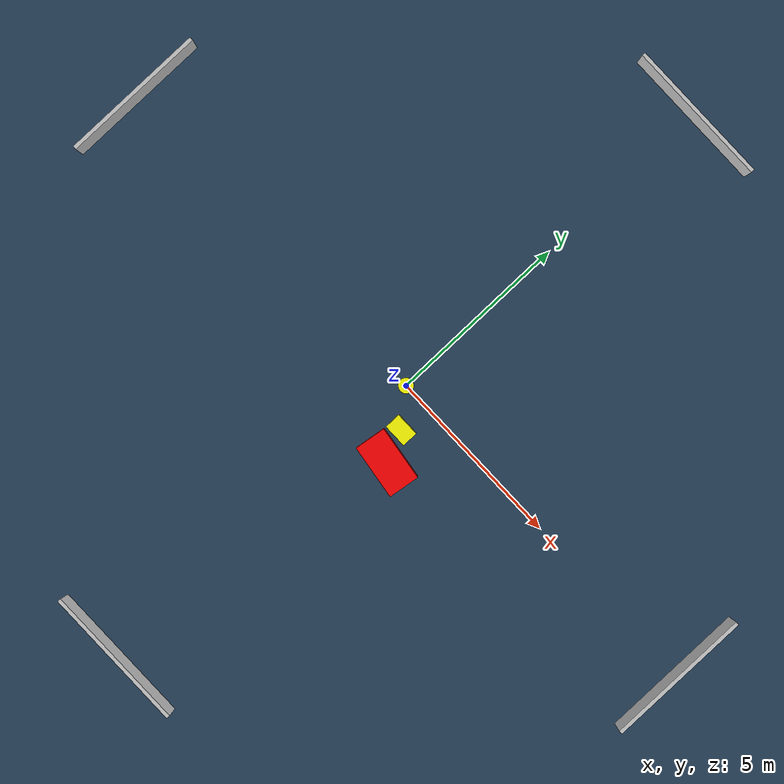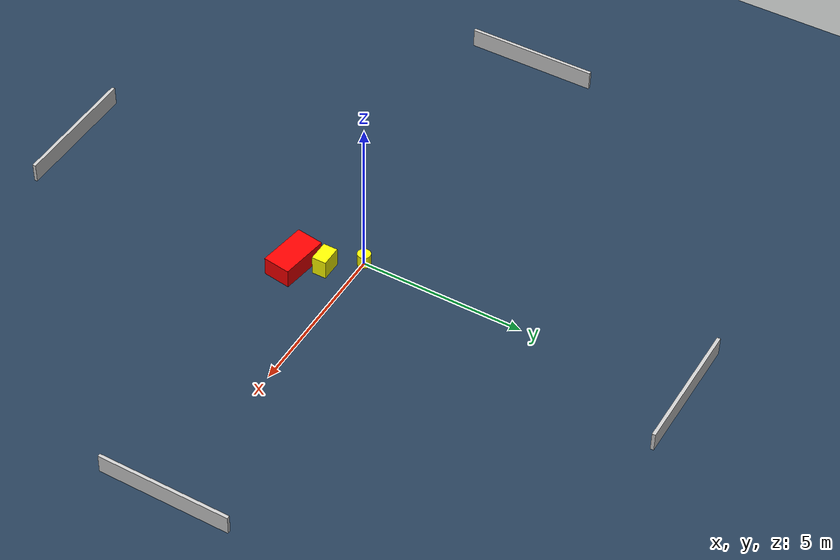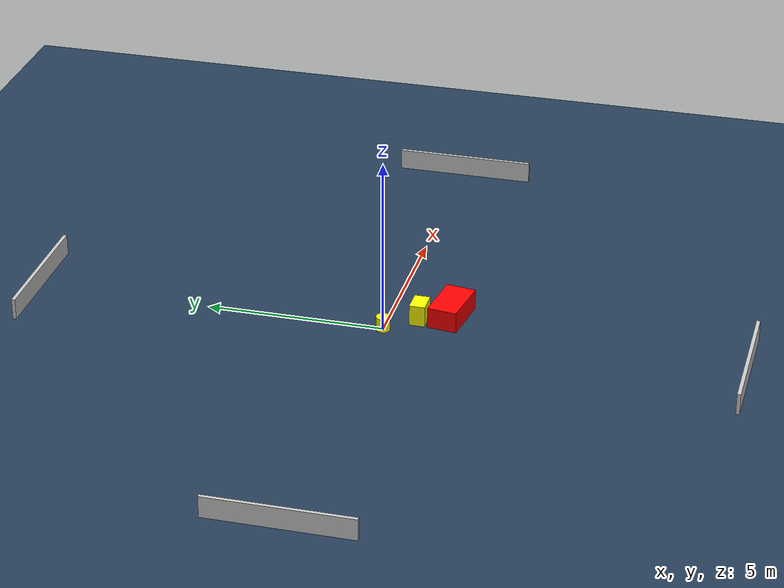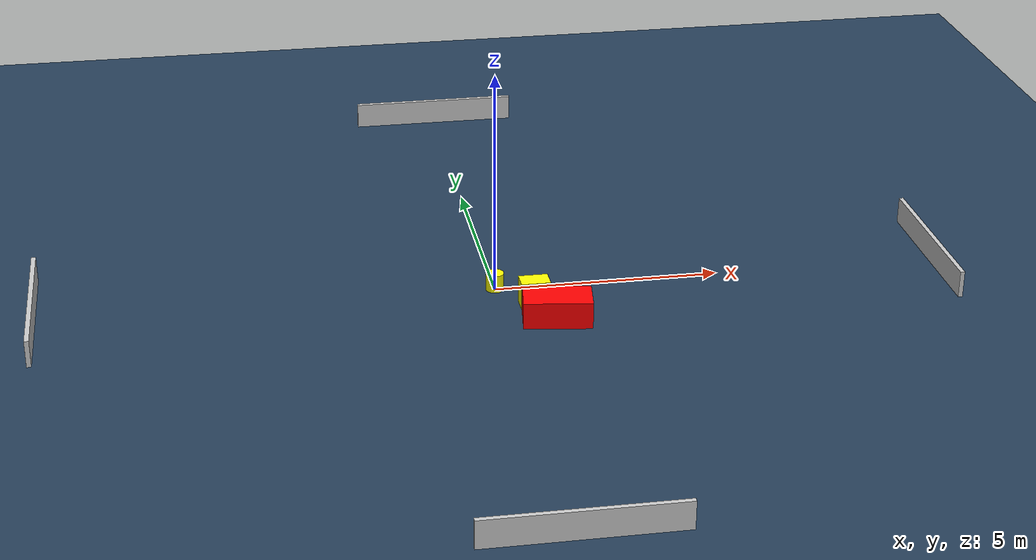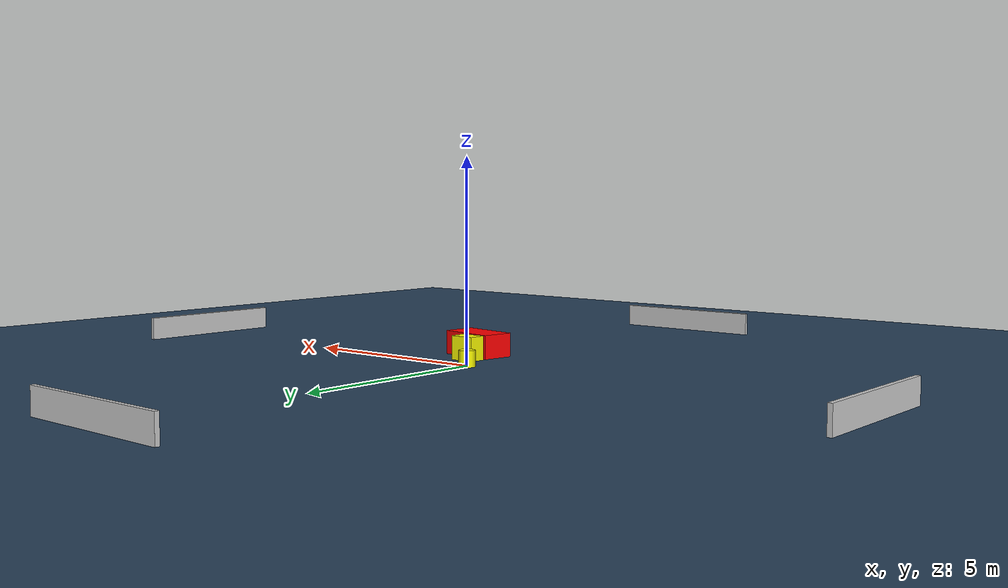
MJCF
<?xml version="1.0" ?>
<mujoco model="generated_environment">
  <option timestep="0.01" integrator="RK4" cone="elliptic"/>
  <default>
    <geom density="1"/>
  </default>
  <asset>
    <texture builtin="gradient" height="3072" name="skybox" rgb1="0.3 0.5 0.7" rgb2="0 0 0" type="skybox" width="512"/>
    <texture builtin="checker" height="300" name="groundplane" rgb1="0.2 0.3 0.4" rgb2="0.1 0.2 0.3" type="2d" width="300"/>
    <material name="groundplane" reflectance="0.2" texrepeat="5 5" texture="groundplane"/>
  </asset>
  <worldbody>
    <light dir="0 0 -1" directional="true" pos="0 0 1.5"/>
    <geom condim="3" friction="0.5 0.005 0.001" material="groundplane" name="floor" pos="0 0 0" size="0 0 0.05" type="plane"/>
    <body name="walls">
      <geom name="wall_1" condim="4" pos="-10.0 0.0 0.3" rgba="0.800000011920929 0.800000011920929 0.800000011920929 1.0" size="0.05 2.0 0.3" type="box"/>
      <geom name="wall_2" condim="4" pos="10.0 0.0 0.3" rgba="0.800000011920929 0.800000011920929 0.800000011920929 1.0" size="0.05 2.0 0.3" type="box"/>
      <geom name="wall_3" condim="4" pos="0.0 -10.0 0.3" rgba="0.800000011920929 0.800000011920929 0.800000011920929 1.0" size="2.0 0.05 0.3" type="box"/>
      <geom name="wall_4" condim="4" pos="0.0 10.0 0.3" rgba="0.800000011920929 0.800000011920929 0.800000011920929 1.0" size="2.0 0.05 0.3" type="box"/>
    </body>
    <body name="robot">
      <joint name="joint_x" type="slide" pos="0 0 0" axis="1 0 0"/>
      <joint name="joint_y" type="slide" pos="0 0 0" axis="0 1 0"/>
      <geom name="robot" type="cylinder" pos="0.0 0.0 0.2" size="0.2 0.2 0.0" mass="5.0" friction="1.0 0.005 0.0001" condim="4" rgba="1.0 1.0 0.0 1.0"/>
    </body>
    <body name="obstacle_1_movable">
      <geom name="obstacle_1_movable" condim="4" pos="0.7327356341688414 -0.8507148105534214 0.3" euler="0 0 270.13790753032447" friction="0.0 0.005 0.001" rgba="1.0 1.0 0.0 1.0" size="0.21929025218037893 0.32152888908668176 0.3" type="box" mass="0.1"/>
      <joint type="free"/>
    </body>
    <body name="obstacle_2_static">
      <geom name="obstacle_2_static" condim="4" pos="1.0859699362384252 -1.6671843453680184 0.3" euler="0 0 171.9609086352318" friction="0.0 0.005 0.001" rgba="1.0 0.0 0.0 1.0" size="0.7424438492616243 0.42201684025440606 0.3" type="box"/>
    </body>
  </worldbody>
  <actuator>
    <motor name="actuator_x" joint="joint_x" gear="1" ctrlrange="-1 1"/>
    <motor name="actuator_y" joint="joint_y" gear="1" ctrlrange="-1 1"/>
  </actuator>
</mujoco>
